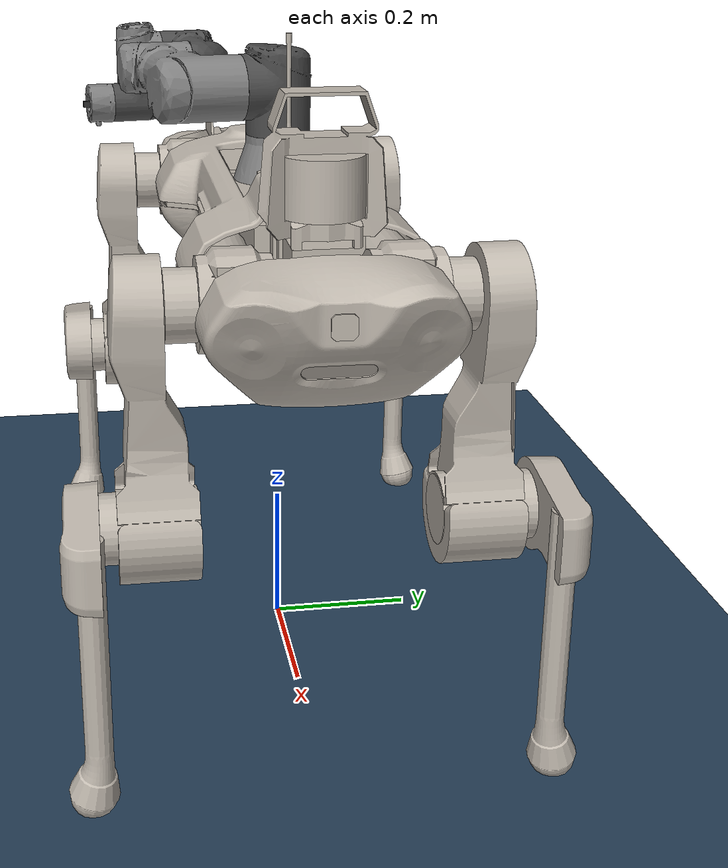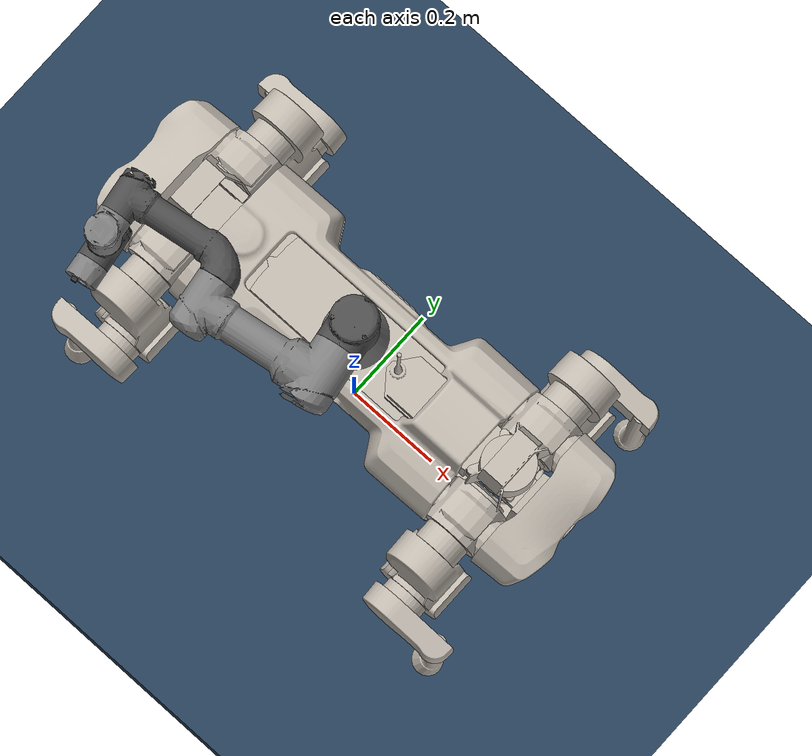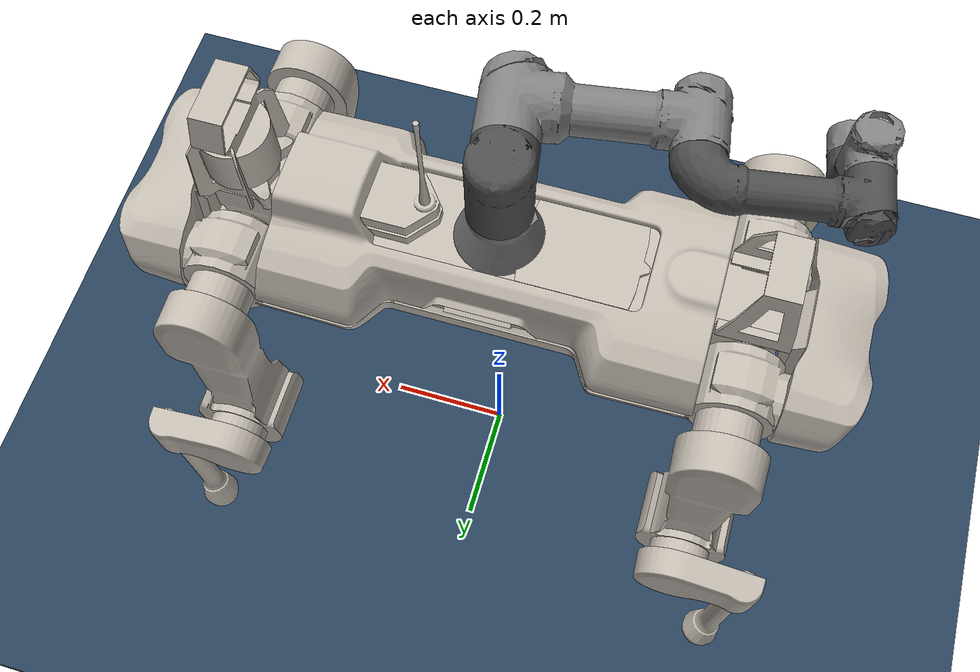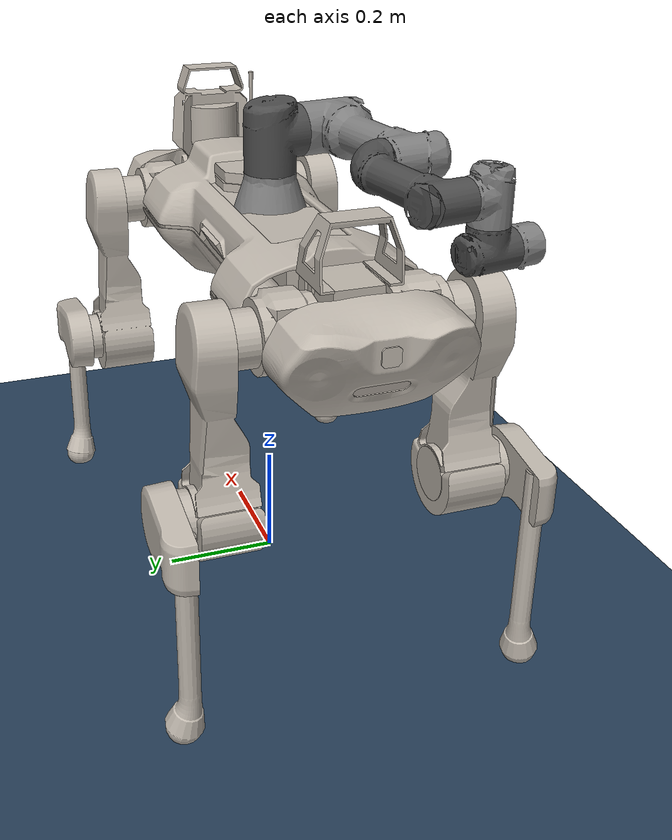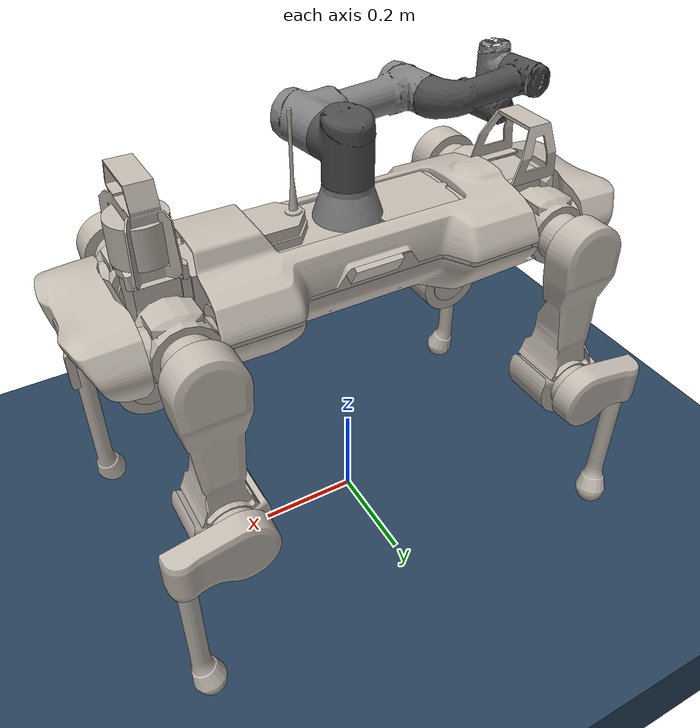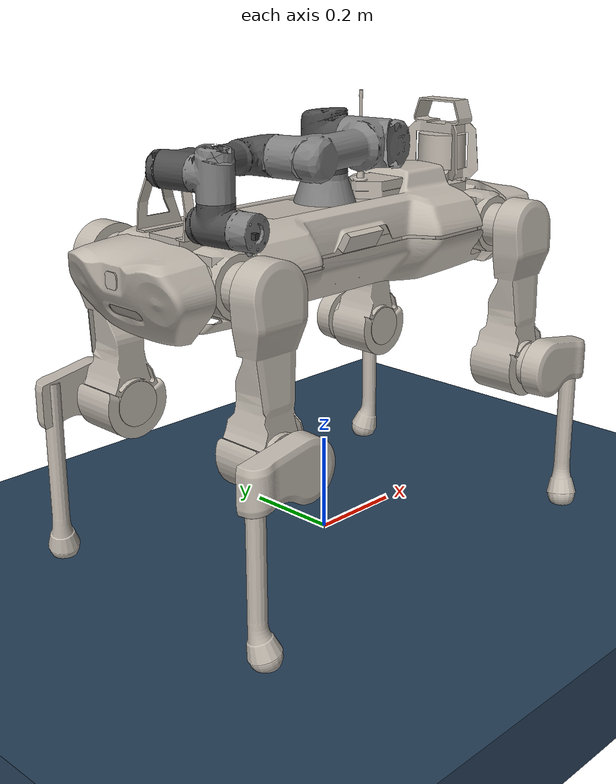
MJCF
<mujoco model="anymal_c_ur3 scene">
  <include file="anymal_c_ur3.xml"/>

  <visual>
    <headlight diffuse="0.6 0.6 0.6"  ambient="0.3 0.3 0.3" specular="0 0 0"/>
    <rgba haze="0.15 0.25 0.35 1"/>
    <global azimuth="120" elevation="-20"/>
  </visual>

  <statistic center="0 0 .3" extent="1.2"/>

  <asset>
    <texture type="skybox" builtin="gradient" rgb1="0.3 0.5 0.7" rgb2="0 0 0" width="512"
        height="3072"/>
    <texture type="2d" name="groundplane" builtin="checker" mark="edge" rgb1="0.2 0.3 0.4"
        rgb2="0.1 0.2 0.3" markrgb="0.8 0.8 0.8" width="300" height="300"/>
    <material name="groundplane" texture="groundplane" texuniform="true" texrepeat="5 5"
        reflectance="0.2"/>
  </asset>

  <worldbody>
    <light pos="0 0 1.5" dir="0 0 -1" directional="true"/>
    <geom size="3 3 0.1" pos="0 0 -0.1" quat="0 0 0 1" type="box" group="0" name="ground" material="groundplane" margin="-0.005" conaffinity="15" condim="6" friction="1.0 0.02 0.01"/>
  </worldbody>

</mujoco>

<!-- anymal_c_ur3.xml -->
<mujoco model="anymal_c_ur3">
  <compiler angle="radian" meshdir="assets" texturedir="assets" autolimits="true"/>

  <option cone="elliptic" impratio="100" solver="PGS"  />

  <default>
    <material specular="0" shininess="0.25"/>
    <default class="anymal_c_ur3">
      <joint damping="1" frictionloss="0.1"/>

      <default class="visual">
        <geom type="mesh" contype="0" conaffinity="0" group="2"/>
        <default class="visual_zflip">
          <geom quat="0 0 0 1"/>
        </default>
      </default>
      <default class="collision">
        <geom group="3" type="cylinder"/>
        <default class="foot">
          <geom type="sphere" size="0.03" pos="0 0 0.02325" priority="1" solimp="0.9 0.95 0.001 0.5 2"
              condim="6" friction="0.8 0.02 0.01"/>
        </default>
      </default>

      <default class="affine">
        <position kp="100" ctrlrange="-6.28 6.28" forcerange="-80 80"/>
      </default>
    </default>
  </default>

  <asset>
    <material name="black_plastic" rgba="0.007 0.007 0.007 1"/>
    <material name="green" rgba="0.052 0.178 0.033 1"/>
    <material name="red" rgba="0.178 0.006 0.005 1"/>
    <material name="yellow" rgba="0.178 0.119 0.006 1"/>
    <material name="lwl" rgba="0.8 0.8 0.8 1"/>
    <material name="base" texture="base"/>
    <material name="top_shell" texture="top_shell"/>
    <material name="bottom_shell" texture="bottom_shell"/>
    <material name="hip_l" texture="hip_l"/>
    <material name="thigh" texture="thigh"/>
    <material name="shank_l" texture="shank_l"/>
    <material name="foot" texture="foot"/>
    <material name="hip_r" texture="hip_r"/>
    <material name="shank" texture="shank_r"/>
    <material name="hatch" texture="hatch"/>
    <material name="remote" texture="remote"/>
    <material name="handle" texture="handle"/>
    <material name="face" texture="face"/>
    <material name="depth_camera" texture="depth_camera"/>
    <material name="wide_angle_camera" texture="wide_angle_camera"/>
    <material name="battery" texture="battery"/>
    <material name="lidar_cage" texture="lidar_cage"/>
    <material name="lidar" texture="lidar"/>
    <material name="drive" texture="drive"/>

    <texture type="2d" name="base" file="base.png"/>
    <texture type="2d" name="top_shell" file="top_shell.png"/>
    <texture type="2d" name="bottom_shell" file="bottom_shell.png"/>
    <texture type="2d" name="remote" file="remote.png"/>
    <texture type="2d" name="hatch" file="hatch.png"/>
    <texture type="2d" name="handle" file="handle.png"/>
    <texture type="2d" name="face" file="face.png"/>
    <texture type="2d" name="battery" file="battery.png"/>
    <texture type="2d" name="lidar_cage" file="lidar_cage.png"/>
    <texture type="2d" name="depth_camera" file="depth_camera.png"/>
    <texture type="2d" name="wide_angle_camera" file="wide_angle_camera.png"/>
    <texture type="2d" name="lidar" file="lidar.png"/>
    <texture type="2d" name="drive" file="drive.png"/>
    <texture type="2d" name="hip_l" file="hip_l.png"/>
    <texture type="2d" name="shank_l" file="shank_l.png"/>
    <texture type="2d" name="foot" file="foot.png"/>
    <texture type="2d" name="thigh" file="thigh.png"/>
    <texture type="2d" name="shank_r" file="shank_r.png"/>
    <texture type="2d" name="hip_r" file="hip_r.png"/>

    <mesh file="base_0.obj"/>
    <mesh file="base_1.obj"/>
    <mesh file="base_2.obj"/>
    <mesh file="base_3.obj"/>
    <mesh file="base_4.obj"/>
    <mesh file="base_5.obj"/>
    <mesh file="top_shell.obj"/>
    <mesh file="bottom_shell.obj"/>
    <mesh file="remote.obj"/>
    <mesh file="handle.obj"/>
    <mesh file="face.obj"/>
    <mesh file="wide_angle_camera.obj"/>
    <mesh file="depth_camera.obj"/>
    <mesh file="battery.obj"/>
    <mesh file="lidar_cage.obj"/>
    <mesh file="lidar.obj"/>
    <mesh file="drive.obj"/>
    <mesh file="hip_l.obj"/>
    <mesh file="thigh.obj"/>
    <mesh file="shank_l.obj"/>
    <mesh file="foot.obj"/>
    <mesh file="hip_r.obj"/>
    <mesh file="hatch.obj"/>
    <mesh file="shank_r.obj"/>
    <!-- ur3 -->
    <mesh name="ur3_base" file="ur3_base.obj"/>
    <mesh name="ur3_shoulder" file="ur3_shoulder.obj"/>
    <mesh name="ur3_upperarm" file="ur3_upperarm.obj"/>
    <mesh name="ur3_forearm" file="ur3_forearm.obj"/>
    <mesh name="ur3_wrist1" file="ur3_wrist1.obj"/>
    <mesh name="ur3_wrist2" file="ur3_wrist2.obj"/>
    <mesh name="ur3_wrist3" file="ur3_wrist3.obj"/>
  </asset>

  <worldbody>
    <light name="spotlight" mode="targetbodycom" target="base" pos="0 -1 2" cutoff="30"/>
    <!-- base -->
    <body name="base" pos="0 0 0.62" quat="0 0 0 1" childclass="anymal_c_ur3">
      <freejoint/>
      <inertial mass="19.2035" pos="0.0025 0 0.0502071" quat="0.5 0.5 0.5 0.5"
          diaginertia="0.639559 0.624031 0.217374"/>
      <geom mesh="base_0" material="green" class="visual"/>
      <geom mesh="base_1" material="yellow" class="visual"/>
      <geom mesh="base_2" material="red" class="visual"/>
      <geom mesh="base_3" material="black_plastic" class="visual"/>
      <geom mesh="base_4" material="lwl" class="visual"/>
      <geom mesh="base_5" material="base" class="visual"/>
      <geom class="collision" size="0.29 0.07 0.09" type="box"/>
      <geom class="collision" size="0.09 0.0725" pos="0.2175 0.07 0" quat="1 0 1 0"/>
      <geom class="collision" size="0.09 0.0725" pos="-0.2175 0.07 0" quat="1 0 1 0"/>
      <geom class="collision" size="0.09 0.0725" pos="0.2175 -0.07 0" quat="1 0 1 0"/>
      <geom class="collision" size="0.09 0.0725" pos="-0.2175 -0.07 0" quat="1 0 1 0"/>
      <geom material="top_shell" mesh="top_shell" class="visual"/>
      <geom material="bottom_shell" mesh="bottom_shell" class="visual"/>
      <geom material="remote" mesh="remote" class="visual"/>
      <geom material="handle" mesh="handle" class="visual"/>
      <geom pos="0.4145 0 0" material="face" mesh="face" class="visual"/>
      <geom class="collision" size="0.055 0.07 0.09" pos="0.4695 0 0" type="box"/>
      <geom class="collision" size="0.09 0.055" pos="0.4695 0.07 0" quat="1 0 1 0"/>
      <geom class="collision" size="0.09 0.055" pos="0.4695 -0.07 0" quat="1 0 1 0"/>
      <geom pos="0.46165 0 -0.0292" quat="0.965926 0 0.258819 0" material="depth_camera"
          mesh="depth_camera" class="visual"/>
      <geom pos="0.513 0 0.01497" material="wide_angle_camera" mesh="wide_angle_camera"
          class="visual"/>
      <geom pos="-0.4145 0 0" material="face" mesh="face" class="visual_zflip"/>
      <geom class="collision" size="0.055 0.07 0.09" pos="-0.4695 0 0" quat="0 0 0 1" type="box"/>
      <geom class="collision" size="0.09 0.055" pos="-0.4695 -0.07 0" quat="0 -1 0 1"/>
      <geom class="collision" size="0.09 0.055" pos="-0.4695 0.07 0" quat="0 -1 0 1"/>
      <geom pos="-0.46165 0 -0.0292" quat="0 -0.258819 0 0.965926" material="depth_camera"
          mesh="depth_camera" class="visual"/>
      <geom pos="-0.513 0 0.01497" material="wide_angle_camera" mesh="wide_angle_camera"
          class="visual_zflip"/>
      <geom material="battery" mesh="battery" class="visual"/>
      <geom pos="0 0.07646 0.02905" quat="0.683013 -0.183013 0.183013 0.683013"
          material="depth_camera" mesh="depth_camera" class="visual"/>
      <geom pos="0 -0.07646 0.02905" quat="0.683013 0.183013 0.183013 -0.683013"
          material="depth_camera" mesh="depth_camera" class="visual"/>
      <geom pos="-0.364 0 0.0735" material="lidar_cage" mesh="lidar_cage" class="visual"/>
      <geom class="collision" size="0.07 0.06" pos="-0.364 0 0.1335"/>
      <geom pos="-0.364 0 0.1422" quat="1 0 0 -1" material="lidar"
          mesh="lidar" class="visual"/>
      <geom pos="0.2999 0.104 0" quat="0.258819 0.965926 0 0" material="drive" mesh="drive"
          class="visual"/>
      <geom pos="0.2999 -0.104 0" quat="0.258819 -0.965926 0 0" material="drive" mesh="drive"
          class="visual"/>
      <geom pos="-0.2999 0.104 0" quat="0 0 0.965926 -0.258819" material="drive" mesh="drive"
          class="visual"/>
      <geom pos="-0.2999 -0.104 0" quat="0 0 -0.965926 -0.258819" material="drive" mesh="drive"
          class="visual"/>
      <geom pos="0.116 0 0.073" material="hatch" mesh="hatch" class="visual"/>
      <!-- leg:LF -->
      <body name="LF_HIP" pos="0.2999 0.104 0" quat="0.258819 0.965926 0 0">
        <inertial mass="2.781" pos="0.0566606 -0.015294 -0.00829784"
            quat="-0.127978 0.709783 -0.135278 0.679359"
            diaginertia="0.00585729 0.00491868 0.00329081"/>
        <joint name="LF_HAA" axis="1 0 0" range="-0.72 0.49"/>
        <geom quat="0.258819 -0.965926 0 0" material="hip_l" mesh="hip_l" class="visual"/>
        <geom pos="0.0599 -0.0725816 -0.041905" quat="0.183013 -0.683013 0.683013 0.183013"
            material="drive" mesh="drive" class="visual"/>
        <geom class="collision" size="0.05 0.07" pos="0.0599 -0.0119598 -0.006905"
            quat="-0.353553 -0.612372 0.612372 -0.353553"/>
        <body name="LF_THIGH" pos="0.0599 -0.0725816 -0.041905"
            quat="0.183013 -0.683013 0.683013 0.183013">
          <inertial mass="3.071" pos="0.0308147 4.64995e-05 -0.245696"
              quat="0.993166 -0.00515309 -0.0806592 0.0841972"
              diaginertia="0.03025 0.0298943 0.00418465"/>
          <joint name="LF_HFE" axis="1 0 0" range="-9.42478 9.42478"/>
          <geom quat="1 0 0 -1" material="thigh" mesh="thigh" class="visual"/>
          <geom class="collision" size="0.065 0.04" pos="0.04 0 0" quat="0.5 0.5 -0.5 -0.5"/>
          <geom class="collision"  size="0.0375 0.03 0.141314" pos="0.03 0 -0.141314"
              quat="1 0 0 -1" type="box"/>
          <geom pos="0.1003 0 -0.285" material="drive" mesh="drive" class="visual"/>
          <geom class="collision" size="0.05 0.07" pos="0.0303 0 -0.285" quat="1 0 1 0"/>
          <body name="LF_SHANK" pos="0.1003 0 -0.285">
            <inertial mass="0.58842" pos="0.005462 -0.0612528 -0.0806598"
                quat="0.992934 -0.115904 -0.00105487 -0.0254421"
                diaginertia="0.0101637 0.00923838 0.00111927"/>
            <joint name="LF_KFE" axis="1 0 0" range="-9.42478 9.42478"/>
            <geom quat="1 0 0 -1" material="shank_l" mesh="shank_l" class="visual"/>
            <geom class="collision" size="0.06 0.02" pos="0.02 0 0" quat="0.5 0.5 -0.5 -0.5"/>
            <geom class="collision" size="0.057499 0.03375 0.019" pos="0.02 -0.057499 0"
                quat="0.5 0.5 -0.5 -0.5" type="box"/>
            <geom pos="0.01305 -0.08795 -0.33797" quat="0.382683 0 0 -0.92388" material="foot"
                mesh="foot" class="visual"/>
            <geom class="collision" size="0.0175 0.141252" pos="0.01305 -0.08795 -0.168985"
                quat="1 0 0 -1"/>
            <geom class="foot" pos="0.01305 -0.08795 -0.31547" quat="1 0 0 -1"/>
          </body>
        </body>
      </body>
      <!-- leg:RF -->
      <body name="RF_HIP" pos="0.2999 -0.104 0" quat="0.258819 -0.965926 0 0">
        <inertial mass="2.781" pos="0.0567633 0.015294 -0.00829784"
            quat="0.13524 0.679072 0.127985 0.710065"
            diaginertia="0.00585928 0.0049205 0.00329064"/>
        <joint name="RF_HAA" axis="1 0 0" range="-0.49 0.72"/>
        <geom quat="0.258819 0.965926 0 0" material="hip_r" mesh="hip_r" class="visual"/>
        <geom pos="0.0599 0.0725816 -0.041905" quat="0.183013 0.683013 0.683013 -0.183013"
            material="drive" mesh="drive" class="visual"/>
        <geom class="collision" size="0.05 0.07" pos="0.0599 0.0119598 -0.006905"
            quat="-0.353553 0.612372 0.612372 0.353553"/>
        <body name="RF_THIGH" pos="0.0599 0.0725816 -0.041905"
            quat="0.183013 0.683013 0.683013 -0.183013">
          <inertial mass="3.071" pos="0.0308147 4.64995e-05 -0.245696"
              quat="0.992775 -0.00512735 -0.0806685 0.0886811"
              diaginertia="0.0302511 0.0298933 0.0041845"/>
          <joint name="RF_HFE" axis="-1 0 0" range="-9.42478 9.42478"/>
          <geom quat="1 0 0 -1" material="thigh" mesh="thigh" class="visual"/>
          <geom class="collision" size="0.065 0.04" pos="0.04 0 0" quat="0.5 0.5 0.5 0.5"/>
          <geom class="collision" size="0.0375 0.03 0.141314" pos="0.03 0 -0.141314"
              quat="1 0 0 1" type="box"/>
          <geom pos="0.1003 0 -0.285" material="drive" mesh="drive" class="visual"/>
          <geom class="collision" size="0.05 0.07" pos="0.0303 0 -0.285" quat="1 0 1 0"/>
          <body name="RF_SHANK" pos="0.1003 0 -0.285">
            <inertial mass="0.58842" pos="0.005462 0.0612528 -0.0806598"
                quat="0.992934 0.115904 -0.00105487 0.0254421"
                diaginertia="0.0101637 0.00923838 0.00111927"/>
            <joint name="RF_KFE" axis="-1 0 0" range="-9.42478 9.42478"/>
            <geom quat="1 0 0 1" material="shank" mesh="shank_r" class="visual"/>
            <geom class="collision" size="0.06 0.02" pos="0.02 0 0" quat="0.5 0.5 0.5 0.5"/>
            <geom class="collision" size="0.057499 0.03375 0.019" pos="0.02 0.057499 0"
                quat="0.5 0.5 0.5 0.5" type="box"/>
            <geom pos="0.01305 0.08795 -0.33797" quat="0.382683 0 0 0.92388" material="foot"
                mesh="foot" class="visual"/>
            <geom class="collision" size="0.0175 0.141252" pos="0.01305 0.08795 -0.168985"
                quat="1 0 0 1"/>
            <geom class="foot" pos="0.01305 0.08795 -0.31547" quat="1 0 0 1"/>
          </body>
        </body>
      </body>
      <!-- leg:LH -->
      <body name="LH_HIP" pos="-0.2999 0.104 0" quat="0 0 0.965926 -0.258819">
        <inertial mass="2.781" pos="0.0567633 0.015294 -0.00829784"
            quat="0.13524 0.679072 0.127985 0.710065"
            diaginertia="0.00585928 0.0049205 0.00329064"/>
        <joint name="LH_HAA" axis="-1 0 0" range="-0.72 0.49"/>
        <geom quat="-0.258819 -0.965926 0 0" material="hip_r" mesh="hip_r" class="visual"/>
        <geom pos="0.0599 0.0725816 -0.041905" quat="0.183013 0.683013 0.683013 -0.183013"
            material="drive" mesh="drive" class="visual"/>
        <geom class="collision" size="0.05 0.07" pos="0.0599 0.0119598 -0.006905"
            quat="-0.353553 0.612372 0.612372 0.353553"/>
        <body name="LH_THIGH" pos="0.0599 0.0725816 -0.041905"
            quat="0.183013 0.683013 0.683013 -0.183013">
          <inertial mass="3.071" pos="0.0308147 4.64995e-05 -0.245696"
              quat="0.992775 -0.00512735 -0.0806685 0.0886811"
              diaginertia="0.0302511 0.0298933 0.0041845"/>
          <joint name="LH_HFE" axis="1 0 0" range="-9.42478 9.42478"/>
          <geom quat="1 0 0 -1" material="thigh" mesh="thigh" class="visual"/>
          <geom class="collision" size="0.065 0.04" pos="0.04 0 0" quat="0.5 0.5 -0.5 -0.5"/>
          <geom class="collision" size="0.0375 0.03 0.141314" pos="0.03 0 -0.141314"
              quat="1 0 0 -1" type="box"/>
          <geom pos="0.1003 0 -0.285" material="drive" mesh="drive" class="visual"/>
          <geom class="collision" size="0.05 0.07" pos="0.0303 0 -0.285" quat="1 0 1 0"/>
          <body name="LH_SHANK" pos="0.1003 0 -0.285">
            <inertial mass="0.58842" pos="0.005462 0.0612528 -0.0806598"
                quat="0.992934 0.115904 -0.00105487 0.0254421"
                diaginertia="0.0101637 0.00923838 0.00111927"/>
            <joint name="LH_KFE" axis="1 0 0" range="-9.42478 9.42478"/>
            <geom quat="-1 0 0 -1" material="shank" mesh="shank_r" class="visual"/>
            <geom class="collision" size="0.06 0.02" pos="0.02 0 0" quat="0.5 0.5 -0.5 -0.5"/>
            <geom class="collision" size="0.057499 0.03375 0.019" pos="0.02 0.057499 0"
                quat="0.5 0.5 -0.5 -0.5" type="box"/>
            <geom pos="0.01305 0.08795 -0.33797" quat="-0.382683 0 0 -0.92388" material="foot"
                mesh="foot" class="visual"/>
            <geom class="collision" size="0.0175 0.141252" pos="0.01305 0.08795 -0.168985"
                quat="1 0 0 -1"/>
            <geom class="foot" pos="0.01305 0.08795 -0.31547" quat="1 0 0 -1"/>
          </body>
        </body>
      </body>
      <!-- leg:RH -->
      <body name="RH_HIP" pos="-0.2999 -0.104 0" quat="0 0 -0.965926 -0.258819">
        <inertial mass="2.781" pos="0.0566606 -0.015294 -0.00829784"
            quat="-0.127978 0.709783 -0.135278 0.679359"
            diaginertia="0.00585729 0.00491868 0.00329081"/>
        <joint name="RH_HAA" axis="-1 0 0" range="-0.49 0.72"/>
        <geom quat="-0.258819 0.965926 0 0" material="hip_l" mesh="hip_l" class="visual"/>
        <geom pos="0.0599 -0.0725816 -0.041905" quat="-0.183013 0.683013 -0.683013 -0.183013"
            material="drive" mesh="drive" class="visual"/>
        <geom class="collision" size="0.05 0.07" pos="0.0599 -0.0119598 -0.006905"
            quat="0.353553 0.612372 -0.612372 0.353553"/>
        <body name="RH_THIGH" pos="0.0599 -0.0725816 -0.041905"
            quat="-0.183013 0.683013 -0.683013 -0.183013">
          <inertial mass="3.071" pos="0.0308147 4.64995e-05 -0.245696"
              quat="0.993166 -0.00515309 -0.0806592 0.0841972"
              diaginertia="0.03025 0.0298943 0.00418465"/>
          <joint name="RH_HFE" axis="-1 0 0" range="-9.42478 9.42478"/>
          <geom quat="1 0 0 -1" material="thigh" mesh="thigh" class="visual"/>
          <geom class="collision" size="0.065 0.04" pos="0.04 0 0" quat="0.5 0.5 0.5 0.5"/>
          <geom class="collision" size="0.0375 0.03 0.141314" pos="0.03 0 -0.141314" quat="1 0 0 1"
              type="box"/>
          <geom pos="0.1003 0 -0.285" material="drive" mesh="drive" class="visual"/>
          <geom class="collision" size="0.05 0.07" pos="0.0303 0 -0.285" quat="1 0 1 0"/>
          <body name="RH_SHANK" pos="0.1003 0 -0.285">
            <inertial mass="0.58842" pos="0.005462 -0.0612528 -0.0806598"
                quat="0.992934 -0.115904 -0.00105487 -0.0254421"
                diaginertia="0.0101637 0.00923838 0.00111927"/>
            <joint name="RH_KFE" axis="-1 0 0" range="-9.42478 9.42478"/>
            <geom quat="1 0 0 -1" material="shank_l" mesh="shank_l" class="visual"/>
            <geom class="collision" size="0.06 0.02" pos="0.02 0 0" quat="0.5 0.5 0.5 0.5"/>
            <geom class="collision" size="0.057499 0.03375 0.019" pos="0.02 -0.057499 0"
                quat="0.5 0.5 0.5 0.5" type="box"/>
            <geom pos="0.01305 -0.08795 -0.33797" quat="0.382683 0 0 -0.92388" material="foot"
                mesh="foot" class="visual"/>
            <geom class="collision" size="0.0175 0.141252" pos="0.01305 -0.08795 -0.168985"
                quat="1 0 0 1"/>
            <geom class="foot" pos="0.01305 -0.08795 -0.31547" quat="1 0 0 1"/>
          </body>
        </body>
      </body>
      <!-- ur3 -->
      <body name="ur3_base" pos="0.0 0 0.05">
        <inertial pos="0 0 0" mass="1.0" diaginertia="0.003 0.003 0.006" />
        <geom rgba="0.5 0.5 0.5 1" mesh="ur3_base" class="visual"/>
        <body name="ur3_shoulder_link" pos="0.00 0 0.1519" quat="0.9971172 0 0 0.075877">
          <inertial pos="0 0 0.0" mass="1.0" diaginertia="0.008 0.008 0.006" />
          <geom rgba="0.3 0.3 0.3 1" mesh="ur3_shoulder" class="visual"/>
          <joint name="ur3_shoulder_pan_joint" axis="0 0 1" range="-6.2832 6.2832"/>
          <body name="ur3_upper_arm_link" pos="0.0 0.1198 0.0" quat="0.7071081 0 0.7071081 0">
            <inertial pos="0.0 0.0 0.1218" mass="1.0" diaginertia="0.022 0.022 0.010"  />
            <geom type="mesh" rgba="0.5 0.5 0.5 1" mesh="ur3_upperarm" class="visual" />
            <joint name="ur3_shoulder_lift_joint" axis="0 1 0" range="-3.1416 3.1416"/>
            <body name="ur3_forearm_link" pos="0.0 -0.0925 0.24365">
              <inertial pos="0.0 0.0 0.10662" mass="1.0" diaginertia="0.007 0.007 0.004" />
              <geom type="mesh" rgba="0.3 0.3 0.3 1" mesh="ur3_forearm" />
              <joint name="ur3_elbow_joint" axis="0 1 0" range="-3.1416 3.1416"/>
              <body name="ur3_wrist_1_link" pos="0.0 0.0 0.21325" quat="0.7071081 0 0.7071081 0">
                <inertial pos="0.0 0.08505 0.0" mass="0.8" diaginertia="0.002 0.002 0.002" />
                <geom type="mesh" rgba="0.5 0.5 0.5 1" mesh="ur3_wrist1" />
                <joint name="ur3_wrist_1_joint" axis="0 1 0" range="-3.1416 3.1416"/>
                <body name="ur3_wrist_2_link" pos="0.0 0.085050 0.0">
                  <inertial pos="0.0 0.0 0.08535" mass="0.8" diaginertia="0.002 0.002 0.002" />
                  <geom type="mesh" rgba="0.3 0.3 0.3 1" mesh="ur3_wrist2" />
                  <joint name="ur3_wrist_2_joint" axis="0 0 1" range="-3.1416 3.1416"/>
                  <body name="ur3_wrist_3_link" pos="0.0 0.0 0.08535">
                    <inertial pos="0 0 0"  mass="0.35" diaginertia="0.00 0.00 0.00" />
                    <geom type="mesh" rgba="0.5 0.5 0.5 1" mesh="ur3_wrist3" />
                    <joint name="ur3_wrist_3_joint" axis="0 1 0" range="-3.1416 3.1416"/>
                    <body name="ur3_ee_link" pos="0 0.0823 0">
                      <inertial pos="-0.01 0 0" mass="0.001"  diaginertia="1.66667e-08 1.66667e-08 1.66667e-08" />
                      <geom size="0.005 0.005 0.005" rgba="0.2 0.2 0.2 1" pos="-0.01 0 0" type="box" />
                    </body>
                  </body>
                </body>
              </body>
            </body>
          </body>
        </body>
      </body>
    </body>
  </worldbody>

  <contact>
    <exclude body1="base" body2="LF_THIGH"/>
    <exclude body1="base" body2="RF_THIGH"/>
    <exclude body1="base" body2="LH_THIGH"/>
    <exclude body1="base" body2="RH_THIGH"/>
    <exclude body1="base" body2="ur3_base"/>
  </contact>

  <actuator>
    <motor joint="LF_HAA" name="LF_HAA"/>
    <motor joint="LF_HFE" name="LF_HFE"/>
    <motor joint="LF_KFE" name="LF_KFE"/>
    <motor joint="RF_HAA" name="RF_HAA"/>
    <motor joint="RF_HFE" name="RF_HFE"/>
    <motor joint="RF_KFE" name="RF_KFE"/>
    <motor joint="LH_HAA" name="LH_HAA"/>
    <motor joint="LH_HFE" name="LH_HFE"/>
    <motor joint="LH_KFE" name="LH_KFE"/>
    <motor joint="RH_HAA" name="RH_HAA"/>
    <motor joint="RH_HFE" name="RH_HFE"/>
    <motor joint="RH_KFE" name="RH_KFE"/>
    <motor joint="ur3_shoulder_pan_joint" name="U3_shoulder"/>
    <motor joint="ur3_shoulder_lift_joint" name="U3_upperarm"/>
    <motor joint="ur3_elbow_joint" name="U3_elbow"/>
    <motor joint="ur3_wrist_1_joint" name="U3_wrist1"/>
    <motor joint="ur3_wrist_2_joint" name="U3_wrist2"/>
    <motor joint="ur3_wrist_3_joint" name="U3_wrist3"/>
  </actuator>
</mujoco>
